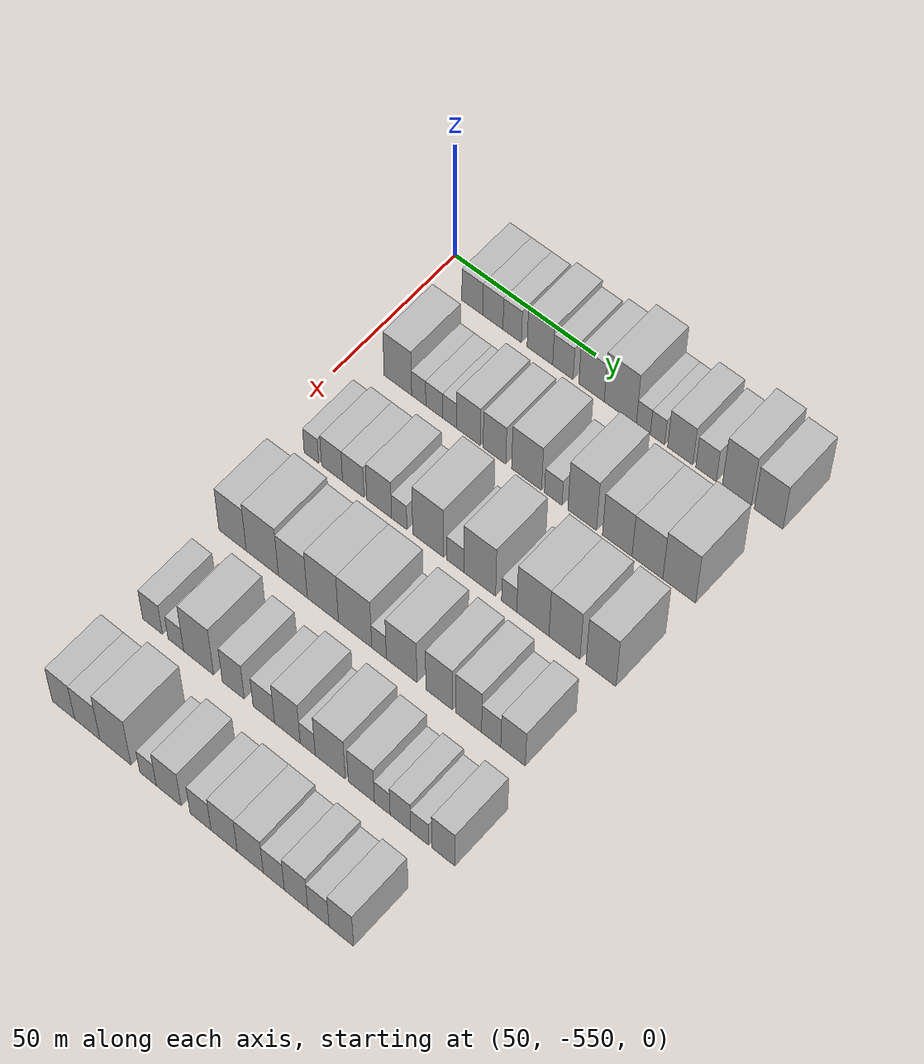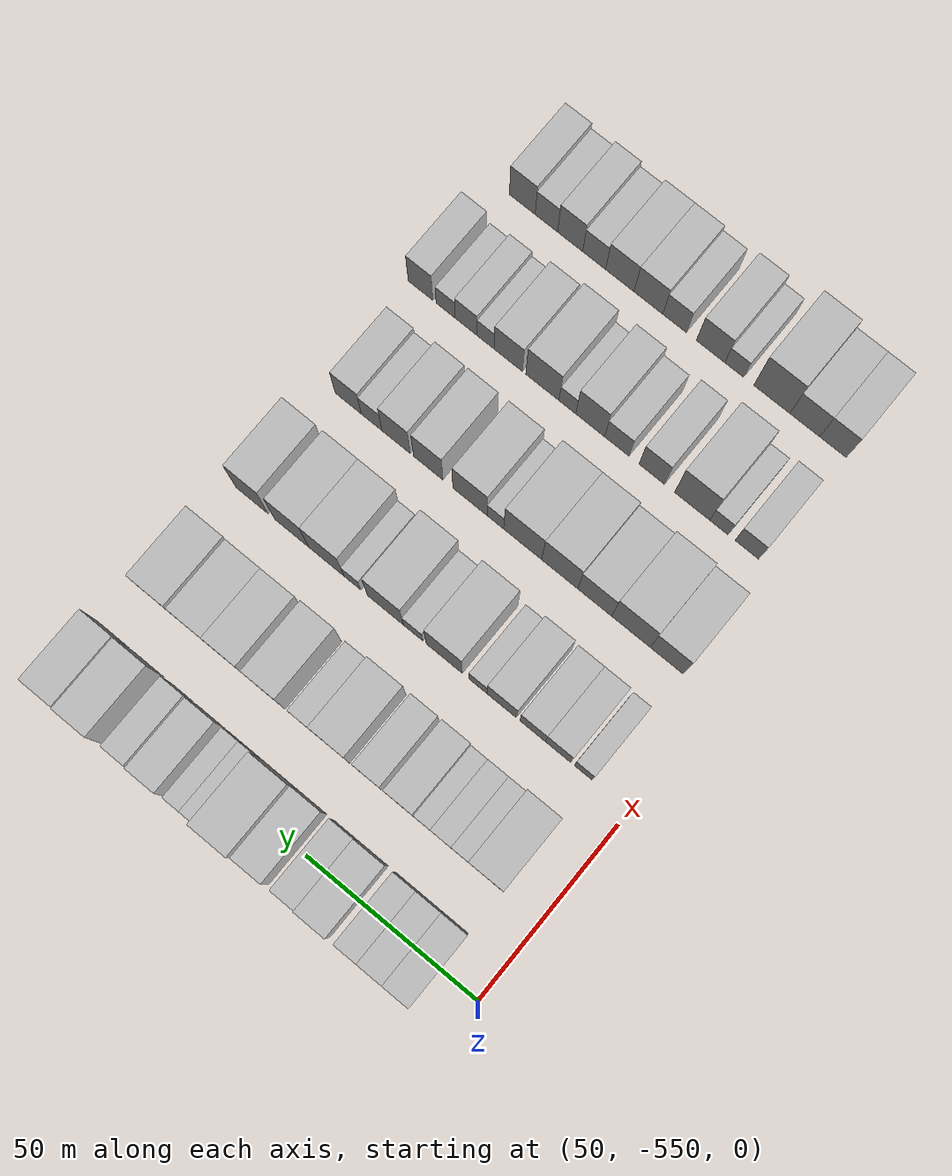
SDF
<sdf version="1.6">
 <world name="default">
  <model name="building_1">
   <static>1</static>
   <pose>50.0000 -535.2608 0 0.000000 0.000000 0.000000</pose>
   <link name="link">
    <pose>0 0 7.50 0 0 0</pose>
    <collision name="collision"><geometry><box><size>20.0000 7.4783 15.0000</size></box></geometry></collision>
    <visual name="visual">
     <cast_shadows>0</cast_shadows>
     <geometry><box><size>20.0000 7.4783 15.0000</size></box></geometry>
     <material>
      <script>
       <uri>model://HANNAS_wall/materials/scripts</uri>
       <uri>model://HANNAS_wall/materials/textures</uri>
       <name>vrc/HANNAS_wall</name>
      </script>
     </material>
    </visual>
   </link>
  </model>
  <model name="building_2">
   <static>1</static>
   <pose>50.0000 -527.9367 0 0.000000 0.000000 0.000000</pose>
   <link name="link">
    <pose>0 0 7.50 0 0 0</pose>
    <collision name="collision"><geometry><box><size>20.0000 7.1699 15.0000</size></box></geometry></collision>
    <visual name="visual">
     <cast_shadows>0</cast_shadows>
     <geometry><box><size>20.0000 7.1699 15.0000</size></box></geometry>
     <material>
      <script>
       <uri>model://HANNAS_wall/materials/scripts</uri>
       <uri>model://HANNAS_wall/materials/textures</uri>
       <name>vrc/HANNAS_wall</name>
      </script>
     </material>
    </visual>
   </link>
  </model>
  <model name="building_3">
   <static>1</static>
   <pose>50.0000 -521.0979 0 0.000000 0.000000 0.000000</pose>
   <link name="link">
    <pose>0 0 7.50 0 0 0</pose>
    <collision name="collision"><geometry><box><size>20.0000 6.5079 15.0000</size></box></geometry></collision>
    <visual name="visual">
     <cast_shadows>0</cast_shadows>
     <geometry><box><size>20.0000 6.5079 15.0000</size></box></geometry>
     <material>
      <script>
       <uri>model://HANNAS_wall/materials/scripts</uri>
       <uri>model://HANNAS_wall/materials/textures</uri>
       <name>vrc/HANNAS_wall</name>
      </script>
     </material>
    </visual>
   </link>
  </model>
  <model name="building_4">
   <static>1</static>
   <pose>50.0000 -511.3593 0 0.000000 0.000000 0.000000</pose>
   <link name="link">
    <pose>0 0 9.00 0 0 0</pose>
    <collision name="collision"><geometry><box><size>20.0000 8.9694 18.0000</size></box></geometry></collision>
    <visual name="visual">
     <cast_shadows>0</cast_shadows>
     <geometry><box><size>20.0000 8.9694 18.0000</size></box></geometry>
     <material>
      <script>
       <uri>model://HANNAS_wall/materials/scripts</uri>
       <uri>model://HANNAS_wall/materials/textures</uri>
       <name>vrc/HANNAS_wall</name>
      </script>
     </material>
    </visual>
   </link>
  </model>
  <model name="building_5">
   <static>1</static>
   <pose>50.0000 -503.3232 0 0.000000 0.000000 0.000000</pose>
   <link name="link">
    <pose>0 0 7.50 0 0 0</pose>
    <collision name="collision"><geometry><box><size>20.0000 7.1027 15.0000</size></box></geometry></collision>
    <visual name="visual">
     <cast_shadows>0</cast_shadows>
     <geometry><box><size>20.0000 7.1027 15.0000</size></box></geometry>
     <material>
      <script>
       <uri>model://HANNAS_wall/materials/scripts</uri>
       <uri>model://HANNAS_wall/materials/textures</uri>
       <name>vrc/HANNAS_wall</name>
      </script>
     </material>
    </visual>
   </link>
  </model>
  <model name="building_6">
   <static>1</static>
   <pose>50.0000 -493.3835 0 0.000000 0.000000 0.000000</pose>
   <link name="link">
    <pose>0 0 9.00 0 0 0</pose>
    <collision name="collision"><geometry><box><size>20.0000 8.7767 18.0000</size></box></geometry></collision>
    <visual name="visual">
     <cast_shadows>0</cast_shadows>
     <geometry><box><size>20.0000 8.7767 18.0000</size></box></geometry>
     <material>
      <script>
       <uri>model://HANNAS_wall/materials/scripts</uri>
       <uri>model://HANNAS_wall/materials/textures</uri>
       <name>vrc/HANNAS_wall</name>
      </script>
     </material>
    </visual>
   </link>
  </model>
  <model name="building_7">
   <static>1</static>
   <pose>50.0000 -483.4961 0 0.000000 0.000000 0.000000</pose>
   <link name="link">
    <pose>0 0 12.00 0 0 0</pose>
    <collision name="collision"><geometry><box><size>20.0000 10.9980 24.0000</size></box></geometry></collision>
    <visual name="visual">
     <cast_shadows>0</cast_shadows>
     <geometry><box><size>20.0000 10.9980 24.0000</size></box></geometry>
     <material>
      <script>
       <uri>model://HANNAS_wall/materials/scripts</uri>
       <uri>model://HANNAS_wall/materials/textures</uri>
       <name>vrc/HANNAS_wall</name>
      </script>
     </material>
    </visual>
   </link>
  </model>
  <model name="building_8">
   <static>1</static>
   <pose>50.0000 -475.5962 0 0.000000 0.000000 0.000000</pose>
   <link name="link">
    <pose>0 0 6.00 0 0 0</pose>
    <collision name="collision"><geometry><box><size>20.0000 4.8018 12.0000</size></box></geometry></collision>
    <visual name="visual">
     <cast_shadows>0</cast_shadows>
     <geometry><box><size>20.0000 4.8018 12.0000</size></box></geometry>
     <material>
      <script>
       <uri>model://HANNAS_wall/materials/scripts</uri>
       <uri>model://HANNAS_wall/materials/textures</uri>
       <name>vrc/HANNAS_wall</name>
      </script>
     </material>
    </visual>
   </link>
  </model>
  <model name="building_9">
   <static>1</static>
   <pose>50.0000 -470.7642 0 0.000000 0.000000 0.000000</pose>
   <link name="link">
    <pose>0 0 6.00 0 0 0</pose>
    <collision name="collision"><geometry><box><size>20.0000 4.8622 12.0000</size></box></geometry></collision>
    <visual name="visual">
     <cast_shadows>0</cast_shadows>
     <geometry><box><size>20.0000 4.8622 12.0000</size></box></geometry>
     <material>
      <script>
       <uri>model://HANNAS_wall/materials/scripts</uri>
       <uri>model://HANNAS_wall/materials/textures</uri>
       <name>vrc/HANNAS_wall</name>
      </script>
     </material>
    </visual>
   </link>
  </model>
  <model name="building_10">
   <static>1</static>
   <pose>50.0000 -463.0663 0 0.000000 0.000000 0.000000</pose>
   <link name="link">
    <pose>0 0 9.00 0 0 0</pose>
    <collision name="collision"><geometry><box><size>20.0000 8.5334 18.0000</size></box></geometry></collision>
    <visual name="visual">
     <cast_shadows>0</cast_shadows>
     <geometry><box><size>20.0000 8.5334 18.0000</size></box></geometry>
     <material>
      <script>
       <uri>model://HANNAS_wall/materials/scripts</uri>
       <uri>model://HANNAS_wall/materials/textures</uri>
       <name>vrc/HANNAS_wall</name>
      </script>
     </material>
    </visual>
   </link>
  </model>
  <model name="building_11">
   <static>1</static>
   <pose>50.0000 -454.3824 0 0.000000 0.000000 0.000000</pose>
   <link name="link">
    <pose>0 0 7.50 0 0 0</pose>
    <collision name="collision"><geometry><box><size>20.0000 6.8344 15.0000</size></box></geometry></collision>
    <visual name="visual">
     <cast_shadows>0</cast_shadows>
     <geometry><box><size>20.0000 6.8344 15.0000</size></box></geometry>
     <material>
      <script>
       <uri>model://HANNAS_wall/materials/scripts</uri>
       <uri>model://HANNAS_wall/materials/textures</uri>
       <name>vrc/HANNAS_wall</name>
      </script>
     </material>
    </visual>
   </link>
  </model>
  <model name="building_12">
   <static>1</static>
   <pose>50.0000 -444.1268 0 0.000000 0.000000 0.000000</pose>
   <link name="link">
    <pose>0 0 12.00 0 0 0</pose>
    <collision name="collision"><geometry><box><size>20.0000 9.6769 24.0000</size></box></geometry></collision>
    <visual name="visual">
     <cast_shadows>0</cast_shadows>
     <geometry><box><size>20.0000 9.6769 24.0000</size></box></geometry>
     <material>
      <script>
       <uri>model://HANNAS_wall/materials/scripts</uri>
       <uri>model://HANNAS_wall/materials/textures</uri>
       <name>vrc/HANNAS_wall</name>
      </script>
     </material>
    </visual>
   </link>
  </model>
  <model name="building_13">
   <static>1</static>
   <pose>50.0000 -433.5658 0 0.000000 0.000000 0.000000</pose>
   <link name="link">
    <pose>0 0 10.50 0 0 0</pose>
    <collision name="collision"><geometry><box><size>20.0000 9.4451 21.0000</size></box></geometry></collision>
    <visual name="visual">
     <cast_shadows>0</cast_shadows>
     <geometry><box><size>20.0000 9.4451 21.0000</size></box></geometry>
     <material>
      <script>
       <uri>model://HANNAS_wall/materials/scripts</uri>
       <uri>model://HANNAS_wall/materials/textures</uri>
       <name>vrc/HANNAS_wall</name>
      </script>
     </material>
    </visual>
   </link>
  </model>
  <model name="building_127">
   <static>1</static>
   <pose>82.0000 -534.1198 0 0.000000 0.000000 0.000000</pose>
   <link name="link">
    <pose>0 0 10.50 0 0 0</pose>
    <collision name="collision"><geometry><box><size>20.0000 9.7603 21.0000</size></box></geometry></collision>
    <visual name="visual">
     <cast_shadows>0</cast_shadows>
     <geometry><box><size>20.0000 9.7603 21.0000</size></box></geometry>
     <material>
      <script>
       <uri>model://HANNAS_wall/materials/scripts</uri>
       <uri>model://HANNAS_wall/materials/textures</uri>
       <name>vrc/HANNAS_wall</name>
      </script>
     </material>
    </visual>
   </link>
  </model>
  <model name="building_128">
   <static>1</static>
   <pose>82.0000 -526.7469 0 0.000000 0.000000 0.000000</pose>
   <link name="link">
    <pose>0 0 6.00 0 0 0</pose>
    <collision name="collision"><geometry><box><size>20.0000 4.9856 12.0000</size></box></geometry></collision>
    <visual name="visual">
     <cast_shadows>0</cast_shadows>
     <geometry><box><size>20.0000 4.9856 12.0000</size></box></geometry>
     <material>
      <script>
       <uri>model://HANNAS_wall/materials/scripts</uri>
       <uri>model://HANNAS_wall/materials/textures</uri>
       <name>vrc/HANNAS_wall</name>
      </script>
     </material>
    </visual>
   </link>
  </model>
  <model name="building_129">
   <static>1</static>
   <pose>82.0000 -521.2752 0 0.000000 0.000000 0.000000</pose>
   <link name="link">
    <pose>0 0 6.00 0 0 0</pose>
    <collision name="collision"><geometry><box><size>20.0000 5.9579 12.0000</size></box></geometry></collision>
    <visual name="visual">
     <cast_shadows>0</cast_shadows>
     <geometry><box><size>20.0000 5.9579 12.0000</size></box></geometry>
     <material>
      <script>
       <uri>model://HANNAS_wall/materials/scripts</uri>
       <uri>model://HANNAS_wall/materials/textures</uri>
       <name>vrc/HANNAS_wall</name>
      </script>
     </material>
    </visual>
   </link>
  </model>
  <model name="building_130">
   <static>1</static>
   <pose>82.0000 -515.8811 0 0.000000 0.000000 0.000000</pose>
   <link name="link">
    <pose>0 0 6.00 0 0 0</pose>
    <collision name="collision"><geometry><box><size>20.0000 4.8302 12.0000</size></box></geometry></collision>
    <visual name="visual">
     <cast_shadows>0</cast_shadows>
     <geometry><box><size>20.0000 4.8302 12.0000</size></box></geometry>
     <material>
      <script>
       <uri>model://HANNAS_wall/materials/scripts</uri>
       <uri>model://HANNAS_wall/materials/textures</uri>
       <name>vrc/HANNAS_wall</name>
      </script>
     </material>
    </visual>
   </link>
  </model>
  <model name="building_131">
   <static>1</static>
   <pose>82.0000 -509.3199 0 0.000000 0.000000 0.000000</pose>
   <link name="link">
    <pose>0 0 9.00 0 0 0</pose>
    <collision name="collision"><geometry><box><size>20.0000 8.2923 18.0000</size></box></geometry></collision>
    <visual name="visual">
     <cast_shadows>0</cast_shadows>
     <geometry><box><size>20.0000 8.2923 18.0000</size></box></geometry>
     <material>
      <script>
       <uri>model://HANNAS_wall/materials/scripts</uri>
       <uri>model://HANNAS_wall/materials/textures</uri>
       <name>vrc/HANNAS_wall</name>
      </script>
     </material>
    </visual>
   </link>
  </model>
  <model name="building_132">
   <static>1</static>
   <pose>82.0000 -500.2524 0 0.000000 0.000000 0.000000</pose>
   <link name="link">
    <pose>0 0 9.00 0 0 0</pose>
    <collision name="collision"><geometry><box><size>20.0000 7.8429 18.0000</size></box></geometry></collision>
    <visual name="visual">
     <cast_shadows>0</cast_shadows>
     <geometry><box><size>20.0000 7.8429 18.0000</size></box></geometry>
     <material>
      <script>
       <uri>model://HANNAS_wall/materials/scripts</uri>
       <uri>model://HANNAS_wall/materials/textures</uri>
       <name>vrc/HANNAS_wall</name>
      </script>
     </material>
    </visual>
   </link>
  </model>
  <model name="building_133">
   <static>1</static>
   <pose>82.0000 -489.1864 0 0.000000 0.000000 0.000000</pose>
   <link name="link">
    <pose>0 0 10.50 0 0 0</pose>
    <collision name="collision"><geometry><box><size>20.0000 10.2890 21.0000</size></box></geometry></collision>
    <visual name="visual">
     <cast_shadows>0</cast_shadows>
     <geometry><box><size>20.0000 10.2890 21.0000</size></box></geometry>
     <material>
      <script>
       <uri>model://HANNAS_wall/materials/scripts</uri>
       <uri>model://HANNAS_wall/materials/textures</uri>
       <name>vrc/HANNAS_wall</name>
      </script>
     </material>
    </visual>
   </link>
  </model>
  <model name="building_134">
   <static>1</static>
   <pose>82.0000 -480.0580 0 0.000000 0.000000 0.000000</pose>
   <link name="link">
    <pose>0 0 6.00 0 0 0</pose>
    <collision name="collision"><geometry><box><size>20.0000 5.9679 12.0000</size></box></geometry></collision>
    <visual name="visual">
     <cast_shadows>0</cast_shadows>
     <geometry><box><size>20.0000 5.9679 12.0000</size></box></geometry>
     <material>
      <script>
       <uri>model://HANNAS_wall/materials/scripts</uri>
       <uri>model://HANNAS_wall/materials/textures</uri>
       <name>vrc/HANNAS_wall</name>
      </script>
     </material>
    </visual>
   </link>
  </model>
  <model name="building_135">
   <static>1</static>
   <pose>82.0000 -470.2388 0 0.000000 0.000000 0.000000</pose>
   <link name="link">
    <pose>0 0 12.00 0 0 0</pose>
    <collision name="collision"><geometry><box><size>20.0000 9.6707 24.0000</size></box></geometry></collision>
    <visual name="visual">
     <cast_shadows>0</cast_shadows>
     <geometry><box><size>20.0000 9.6707 24.0000</size></box></geometry>
     <material>
      <script>
       <uri>model://HANNAS_wall/materials/scripts</uri>
       <uri>model://HANNAS_wall/materials/textures</uri>
       <name>vrc/HANNAS_wall</name>
      </script>
     </material>
    </visual>
   </link>
  </model>
  <model name="building_136">
   <static>1</static>
   <pose>82.0000 -458.4514 0 0.000000 0.000000 0.000000</pose>
   <link name="link">
    <pose>0 0 10.50 0 0 0</pose>
    <collision name="collision"><geometry><box><size>20.0000 9.9041 21.0000</size></box></geometry></collision>
    <visual name="visual">
     <cast_shadows>0</cast_shadows>
     <geometry><box><size>20.0000 9.9041 21.0000</size></box></geometry>
     <material>
      <script>
       <uri>model://HANNAS_wall/materials/scripts</uri>
       <uri>model://HANNAS_wall/materials/textures</uri>
       <name>vrc/HANNAS_wall</name>
      </script>
     </material>
    </visual>
   </link>
  </model>
  <model name="building_137">
   <static>1</static>
   <pose>82.0000 -448.3901 0 0.000000 0.000000 0.000000</pose>
   <link name="link">
    <pose>0 0 10.50 0 0 0</pose>
    <collision name="collision"><geometry><box><size>20.0000 10.2185 21.0000</size></box></geometry></collision>
    <visual name="visual">
     <cast_shadows>0</cast_shadows>
     <geometry><box><size>20.0000 10.2185 21.0000</size></box></geometry>
     <material>
      <script>
       <uri>model://HANNAS_wall/materials/scripts</uri>
       <uri>model://HANNAS_wall/materials/textures</uri>
       <name>vrc/HANNAS_wall</name>
      </script>
     </material>
    </visual>
   </link>
  </model>
  <model name="building_138">
   <static>1</static>
   <pose>82.0000 -437.8730 0 0.000000 0.000000 0.000000</pose>
   <link name="link">
    <pose>0 0 12.00 0 0 0</pose>
    <collision name="collision"><geometry><box><size>20.0000 10.8157 24.0000</size></box></geometry></collision>
    <visual name="visual">
     <cast_shadows>0</cast_shadows>
     <geometry><box><size>20.0000 10.8157 24.0000</size></box></geometry>
     <material>
      <script>
       <uri>model://HANNAS_wall/materials/scripts</uri>
       <uri>model://HANNAS_wall/materials/textures</uri>
       <name>vrc/HANNAS_wall</name>
      </script>
     </material>
    </visual>
   </link>
  </model>
  <model name="building_252">
   <static>1</static>
   <pose>114.0000 -536.4174 0 0.000000 0.000000 0.000000</pose>
   <link name="link">
    <pose>0 0 6.00 0 0 0</pose>
    <collision name="collision"><geometry><box><size>20.0000 5.1651 12.0000</size></box></geometry></collision>
    <visual name="visual">
     <cast_shadows>0</cast_shadows>
     <geometry><box><size>20.0000 5.1651 12.0000</size></box></geometry>
     <material>
      <script>
       <uri>model://HANNAS_wall/materials/scripts</uri>
       <uri>model://HANNAS_wall/materials/textures</uri>
       <name>vrc/HANNAS_wall</name>
      </script>
     </material>
    </visual>
   </link>
  </model>
  <model name="building_253">
   <static>1</static>
   <pose>114.0000 -529.1294 0 0.000000 0.000000 0.000000</pose>
   <link name="link">
    <pose>0 0 7.50 0 0 0</pose>
    <collision name="collision"><geometry><box><size>20.0000 7.4110 15.0000</size></box></geometry></collision>
    <visual name="visual">
     <cast_shadows>0</cast_shadows>
     <geometry><box><size>20.0000 7.4110 15.0000</size></box></geometry>
     <material>
      <script>
       <uri>model://HANNAS_wall/materials/scripts</uri>
       <uri>model://HANNAS_wall/materials/textures</uri>
       <name>vrc/HANNAS_wall</name>
      </script>
     </material>
    </visual>
   </link>
  </model>
  <model name="building_254">
   <static>1</static>
   <pose>114.0000 -521.6762 0 0.000000 0.000000 0.000000</pose>
   <link name="link">
    <pose>0 0 7.50 0 0 0</pose>
    <collision name="collision"><geometry><box><size>20.0000 7.4954 15.0000</size></box></geometry></collision>
    <visual name="visual">
     <cast_shadows>0</cast_shadows>
     <geometry><box><size>20.0000 7.4954 15.0000</size></box></geometry>
     <material>
      <script>
       <uri>model://HANNAS_wall/materials/scripts</uri>
       <uri>model://HANNAS_wall/materials/textures</uri>
       <name>vrc/HANNAS_wall</name>
      </script>
     </material>
    </visual>
   </link>
  </model>
  <model name="building_255">
   <static>1</static>
   <pose>114.0000 -512.6109 0 0.000000 0.000000 0.000000</pose>
   <link name="link">
    <pose>0 0 9.00 0 0 0</pose>
    <collision name="collision"><geometry><box><size>20.0000 8.6351 18.0000</size></box></geometry></collision>
    <visual name="visual">
     <cast_shadows>0</cast_shadows>
     <geometry><box><size>20.0000 8.6351 18.0000</size></box></geometry>
     <material>
      <script>
       <uri>model://HANNAS_wall/materials/scripts</uri>
       <uri>model://HANNAS_wall/materials/textures</uri>
       <name>vrc/HANNAS_wall</name>
      </script>
     </material>
    </visual>
   </link>
  </model>
  <model name="building_256">
   <static>1</static>
   <pose>114.0000 -505.6422 0 0.000000 0.000000 0.000000</pose>
   <link name="link">
    <pose>0 0 6.00 0 0 0</pose>
    <collision name="collision"><geometry><box><size>20.0000 5.3022 12.0000</size></box></geometry></collision>
    <visual name="visual">
     <cast_shadows>0</cast_shadows>
     <geometry><box><size>20.0000 5.3022 12.0000</size></box></geometry>
     <material>
      <script>
       <uri>model://HANNAS_wall/materials/scripts</uri>
       <uri>model://HANNAS_wall/materials/textures</uri>
       <name>vrc/HANNAS_wall</name>
      </script>
     </material>
    </visual>
   </link>
  </model>
  <model name="building_257">
   <static>1</static>
   <pose>114.0000 -495.6509 0 0.000000 0.000000 0.000000</pose>
   <link name="link">
    <pose>0 0 12.00 0 0 0</pose>
    <collision name="collision"><geometry><box><size>20.0000 10.6805 24.0000</size></box></geometry></collision>
    <visual name="visual">
     <cast_shadows>0</cast_shadows>
     <geometry><box><size>20.0000 10.6805 24.0000</size></box></geometry>
     <material>
      <script>
       <uri>model://HANNAS_wall/materials/scripts</uri>
       <uri>model://HANNAS_wall/materials/textures</uri>
       <name>vrc/HANNAS_wall</name>
      </script>
     </material>
    </visual>
   </link>
  </model>
  <model name="building_258">
   <static>1</static>
   <pose>114.0000 -486.4150 0 0.000000 0.000000 0.000000</pose>
   <link name="link">
    <pose>0 0 6.00 0 0 0</pose>
    <collision name="collision"><geometry><box><size>20.0000 5.7912 12.0000</size></box></geometry></collision>
    <visual name="visual">
     <cast_shadows>0</cast_shadows>
     <geometry><box><size>20.0000 5.7912 12.0000</size></box></geometry>
     <material>
      <script>
       <uri>model://HANNAS_wall/materials/scripts</uri>
       <uri>model://HANNAS_wall/materials/textures</uri>
       <name>vrc/HANNAS_wall</name>
      </script>
     </material>
    </visual>
   </link>
  </model>
  <model name="building_259">
   <static>1</static>
   <pose>114.0000 -478.1163 0 0.000000 0.000000 0.000000</pose>
   <link name="link">
    <pose>0 0 12.00 0 0 0</pose>
    <collision name="collision"><geometry><box><size>20.0000 10.8062 24.0000</size></box></geometry></collision>
    <visual name="visual">
     <cast_shadows>0</cast_shadows>
     <geometry><box><size>20.0000 10.8062 24.0000</size></box></geometry>
     <material>
      <script>
       <uri>model://HANNAS_wall/materials/scripts</uri>
       <uri>model://HANNAS_wall/materials/textures</uri>
       <name>vrc/HANNAS_wall</name>
      </script>
     </material>
    </visual>
   </link>
  </model>
  <model name="building_260">
   <static>1</static>
   <pose>114.0000 -468.1643 0 0.000000 0.000000 0.000000</pose>
   <link name="link">
    <pose>0 0 6.00 0 0 0</pose>
    <collision name="collision"><geometry><box><size>20.0000 5.0977 12.0000</size></box></geometry></collision>
    <visual name="visual">
     <cast_shadows>0</cast_shadows>
     <geometry><box><size>20.0000 5.0977 12.0000</size></box></geometry>
     <material>
      <script>
       <uri>model://HANNAS_wall/materials/scripts</uri>
       <uri>model://HANNAS_wall/materials/textures</uri>
       <name>vrc/HANNAS_wall</name>
      </script>
     </material>
    </visual>
   </link>
  </model>
  <model name="building_261">
   <static>1</static>
   <pose>114.0000 -460.2305 0 0.000000 0.000000 0.000000</pose>
   <link name="link">
    <pose>0 0 12.00 0 0 0</pose>
    <collision name="collision"><geometry><box><size>20.0000 10.7701 24.0000</size></box></geometry></collision>
    <visual name="visual">
     <cast_shadows>0</cast_shadows>
     <geometry><box><size>20.0000 10.7701 24.0000</size></box></geometry>
     <material>
      <script>
       <uri>model://HANNAS_wall/materials/scripts</uri>
       <uri>model://HANNAS_wall/materials/textures</uri>
       <name>vrc/HANNAS_wall</name>
      </script>
     </material>
    </visual>
   </link>
  </model>
  <model name="building_262">
   <static>1</static>
   <pose>114.0000 -449.7230 0 0.000000 0.000000 0.000000</pose>
   <link name="link">
    <pose>0 0 12.00 0 0 0</pose>
    <collision name="collision"><geometry><box><size>20.0000 10.2449 24.0000</size></box></geometry></collision>
    <visual name="visual">
     <cast_shadows>0</cast_shadows>
     <geometry><box><size>20.0000 10.2449 24.0000</size></box></geometry>
     <material>
      <script>
       <uri>model://HANNAS_wall/materials/scripts</uri>
       <uri>model://HANNAS_wall/materials/textures</uri>
       <name>vrc/HANNAS_wall</name>
      </script>
     </material>
    </visual>
   </link>
  </model>
  <model name="building_263">
   <static>1</static>
   <pose>114.0000 -437.6771 0 0.000000 0.000000 0.000000</pose>
   <link name="link">
    <pose>0 0 12.00 0 0 0</pose>
    <collision name="collision"><geometry><box><size>20.0000 9.8470 24.0000</size></box></geometry></collision>
    <visual name="visual">
     <cast_shadows>0</cast_shadows>
     <geometry><box><size>20.0000 9.8470 24.0000</size></box></geometry>
     <material>
      <script>
       <uri>model://HANNAS_wall/materials/scripts</uri>
       <uri>model://HANNAS_wall/materials/textures</uri>
       <name>vrc/HANNAS_wall</name>
      </script>
     </material>
    </visual>
   </link>
  </model>
  <model name="building_375">
   <static>1</static>
   <pose>146.0000 -535.1988 0 0.000000 0.000000 0.000000</pose>
   <link name="link">
    <pose>0 0 10.50 0 0 0</pose>
    <collision name="collision"><geometry><box><size>20.0000 9.6025 21.0000</size></box></geometry></collision>
    <visual name="visual">
     <cast_shadows>0</cast_shadows>
     <geometry><box><size>20.0000 9.6025 21.0000</size></box></geometry>
     <material>
      <script>
       <uri>model://HANNAS_wall/materials/scripts</uri>
       <uri>model://HANNAS_wall/materials/textures</uri>
       <name>vrc/HANNAS_wall</name>
      </script>
     </material>
    </visual>
   </link>
  </model>
  <model name="building_376">
   <static>1</static>
   <pose>146.0000 -524.7533 0 0.000000 0.000000 0.000000</pose>
   <link name="link">
    <pose>0 0 12.00 0 0 0</pose>
    <collision name="collision"><geometry><box><size>20.0000 11.2885 24.0000</size></box></geometry></collision>
    <visual name="visual">
     <cast_shadows>0</cast_shadows>
     <geometry><box><size>20.0000 11.2885 24.0000</size></box></geometry>
     <material>
      <script>
       <uri>model://HANNAS_wall/materials/scripts</uri>
       <uri>model://HANNAS_wall/materials/textures</uri>
       <name>vrc/HANNAS_wall</name>
      </script>
     </material>
    </visual>
   </link>
  </model>
  <model name="building_377">
   <static>1</static>
   <pose>146.0000 -514.0977 0 0.000000 0.000000 0.000000</pose>
   <link name="link">
    <pose>0 0 10.50 0 0 0</pose>
    <collision name="collision"><geometry><box><size>20.0000 10.0226 21.0000</size></box></geometry></collision>
    <visual name="visual">
     <cast_shadows>0</cast_shadows>
     <geometry><box><size>20.0000 10.0226 21.0000</size></box></geometry>
     <material>
      <script>
       <uri>model://HANNAS_wall/materials/scripts</uri>
       <uri>model://HANNAS_wall/materials/textures</uri>
       <name>vrc/HANNAS_wall</name>
      </script>
     </material>
    </visual>
   </link>
  </model>
  <model name="building_378">
   <static>1</static>
   <pose>146.0000 -503.7047 0 0.000000 0.000000 0.000000</pose>
   <link name="link">
    <pose>0 0 12.00 0 0 0</pose>
    <collision name="collision"><geometry><box><size>20.0000 10.7633 24.0000</size></box></geometry></collision>
    <visual name="visual">
     <cast_shadows>0</cast_shadows>
     <geometry><box><size>20.0000 10.7633 24.0000</size></box></geometry>
     <material>
      <script>
       <uri>model://HANNAS_wall/materials/scripts</uri>
       <uri>model://HANNAS_wall/materials/textures</uri>
       <name>vrc/HANNAS_wall</name>
      </script>
     </material>
    </visual>
   </link>
  </model>
  <model name="building_379">
   <static>1</static>
   <pose>146.0000 -492.6381 0 0.000000 0.000000 0.000000</pose>
   <link name="link">
    <pose>0 0 12.00 0 0 0</pose>
    <collision name="collision"><geometry><box><size>20.0000 11.3700 24.0000</size></box></geometry></collision>
    <visual name="visual">
     <cast_shadows>0</cast_shadows>
     <geometry><box><size>20.0000 11.3700 24.0000</size></box></geometry>
     <material>
      <script>
       <uri>model://HANNAS_wall/materials/scripts</uri>
       <uri>model://HANNAS_wall/materials/textures</uri>
       <name>vrc/HANNAS_wall</name>
      </script>
     </material>
    </visual>
   </link>
  </model>
  <model name="building_380">
   <static>1</static>
   <pose>146.0000 -484.4740 0 0.000000 0.000000 0.000000</pose>
   <link name="link">
    <pose>0 0 6.00 0 0 0</pose>
    <collision name="collision"><geometry><box><size>20.0000 4.9581 12.0000</size></box></geometry></collision>
    <visual name="visual">
     <cast_shadows>0</cast_shadows>
     <geometry><box><size>20.0000 4.9581 12.0000</size></box></geometry>
     <material>
      <script>
       <uri>model://HANNAS_wall/materials/scripts</uri>
       <uri>model://HANNAS_wall/materials/textures</uri>
       <name>vrc/HANNAS_wall</name>
      </script>
     </material>
    </visual>
   </link>
  </model>
  <model name="building_381">
   <static>1</static>
   <pose>146.0000 -476.8470 0 0.000000 0.000000 0.000000</pose>
   <link name="link">
    <pose>0 0 10.50 0 0 0</pose>
    <collision name="collision"><geometry><box><size>20.0000 10.2960 21.0000</size></box></geometry></collision>
    <visual name="visual">
     <cast_shadows>0</cast_shadows>
     <geometry><box><size>20.0000 10.2960 21.0000</size></box></geometry>
     <material>
      <script>
       <uri>model://HANNAS_wall/materials/scripts</uri>
       <uri>model://HANNAS_wall/materials/textures</uri>
       <name>vrc/HANNAS_wall</name>
      </script>
     </material>
    </visual>
   </link>
  </model>
  <model name="building_382">
   <static>1</static>
   <pose>146.0000 -464.2639 0 0.000000 0.000000 0.000000</pose>
   <link name="link">
    <pose>0 0 10.50 0 0 0</pose>
    <collision name="collision"><geometry><box><size>20.0000 8.8702 21.0000</size></box></geometry></collision>
    <visual name="visual">
     <cast_shadows>0</cast_shadows>
     <geometry><box><size>20.0000 8.8702 21.0000</size></box></geometry>
     <material>
      <script>
       <uri>model://HANNAS_wall/materials/scripts</uri>
       <uri>model://HANNAS_wall/materials/textures</uri>
       <name>vrc/HANNAS_wall</name>
      </script>
     </material>
    </visual>
   </link>
  </model>
  <model name="building_383">
   <static>1</static>
   <pose>146.0000 -454.5128 0 0.000000 0.000000 0.000000</pose>
   <link name="link">
    <pose>0 0 10.50 0 0 0</pose>
    <collision name="collision"><geometry><box><size>20.0000 8.6319 21.0000</size></box></geometry></collision>
    <visual name="visual">
     <cast_shadows>0</cast_shadows>
     <geometry><box><size>20.0000 8.6319 21.0000</size></box></geometry>
     <material>
      <script>
       <uri>model://HANNAS_wall/materials/scripts</uri>
       <uri>model://HANNAS_wall/materials/textures</uri>
       <name>vrc/HANNAS_wall</name>
      </script>
     </material>
    </visual>
   </link>
  </model>
  <model name="building_384">
   <static>1</static>
   <pose>146.0000 -447.0395 0 0.000000 0.000000 0.000000</pose>
   <link name="link">
    <pose>0 0 7.50 0 0 0</pose>
    <collision name="collision"><geometry><box><size>20.0000 6.3147 15.0000</size></box></geometry></collision>
    <visual name="visual">
     <cast_shadows>0</cast_shadows>
     <geometry><box><size>20.0000 6.3147 15.0000</size></box></geometry>
     <material>
      <script>
       <uri>model://HANNAS_wall/materials/scripts</uri>
       <uri>model://HANNAS_wall/materials/textures</uri>
       <name>vrc/HANNAS_wall</name>
      </script>
     </material>
    </visual>
   </link>
  </model>
  <model name="building_385">
   <static>1</static>
   <pose>146.0000 -439.8746 0 0.000000 0.000000 0.000000</pose>
   <link name="link">
    <pose>0 0 9.00 0 0 0</pose>
    <collision name="collision"><geometry><box><size>20.0000 8.0152 18.0000</size></box></geometry></collision>
    <visual name="visual">
     <cast_shadows>0</cast_shadows>
     <geometry><box><size>20.0000 8.0152 18.0000</size></box></geometry>
     <material>
      <script>
       <uri>model://HANNAS_wall/materials/scripts</uri>
       <uri>model://HANNAS_wall/materials/textures</uri>
       <name>vrc/HANNAS_wall</name>
      </script>
     </material>
    </visual>
   </link>
  </model>
  <model name="building_491">
   <static>1</static>
   <pose>178.0000 -533.5242 0 0.000000 0.000000 0.000000</pose>
   <link name="link">
    <pose>0 0 7.50 0 0 0</pose>
    <collision name="collision"><geometry><box><size>20.0000 6.9517 15.0000</size></box></geometry></collision>
    <visual name="visual">
     <cast_shadows>0</cast_shadows>
     <geometry><box><size>20.0000 6.9517 15.0000</size></box></geometry>
     <material>
      <script>
       <uri>model://HANNAS_wall/materials/scripts</uri>
       <uri>model://HANNAS_wall/materials/textures</uri>
       <name>vrc/HANNAS_wall</name>
      </script>
     </material>
    </visual>
   </link>
  </model>
  <model name="building_492">
   <static>1</static>
   <pose>178.0000 -525.3289 0 0.000000 0.000000 0.000000</pose>
   <link name="link">
    <pose>0 0 6.00 0 0 0</pose>
    <collision name="collision"><geometry><box><size>20.0000 5.4388 12.0000</size></box></geometry></collision>
    <visual name="visual">
     <cast_shadows>0</cast_shadows>
     <geometry><box><size>20.0000 5.4388 12.0000</size></box></geometry>
     <material>
      <script>
       <uri>model://HANNAS_wall/materials/scripts</uri>
       <uri>model://HANNAS_wall/materials/textures</uri>
       <name>vrc/HANNAS_wall</name>
      </script>
     </material>
    </visual>
   </link>
  </model>
  <model name="building_493">
   <static>1</static>
   <pose>178.0000 -517.4006 0 0.000000 0.000000 0.000000</pose>
   <link name="link">
    <pose>0 0 12.00 0 0 0</pose>
    <collision name="collision"><geometry><box><size>20.0000 10.4180 24.0000</size></box></geometry></collision>
    <visual name="visual">
     <cast_shadows>0</cast_shadows>
     <geometry><box><size>20.0000 10.4180 24.0000</size></box></geometry>
     <material>
      <script>
       <uri>model://HANNAS_wall/materials/scripts</uri>
       <uri>model://HANNAS_wall/materials/textures</uri>
       <name>vrc/HANNAS_wall</name>
      </script>
     </material>
    </visual>
   </link>
  </model>
  <model name="building_494">
   <static>1</static>
   <pose>178.0000 -505.4072 0 0.000000 0.000000 0.000000</pose>
   <link name="link">
    <pose>0 0 9.00 0 0 0</pose>
    <collision name="collision"><geometry><box><size>20.0000 7.5688 18.0000</size></box></geometry></collision>
    <visual name="visual">
     <cast_shadows>0</cast_shadows>
     <geometry><box><size>20.0000 7.5688 18.0000</size></box></geometry>
     <material>
      <script>
       <uri>model://HANNAS_wall/materials/scripts</uri>
       <uri>model://HANNAS_wall/materials/textures</uri>
       <name>vrc/HANNAS_wall</name>
      </script>
     </material>
    </visual>
   </link>
  </model>
  <model name="building_495">
   <static>1</static>
   <pose>178.0000 -494.9598 0 0.000000 0.000000 0.000000</pose>
   <link name="link">
    <pose>0 0 7.50 0 0 0</pose>
    <collision name="collision"><geometry><box><size>20.0000 7.3258 15.0000</size></box></geometry></collision>
    <visual name="visual">
     <cast_shadows>0</cast_shadows>
     <geometry><box><size>20.0000 7.3258 15.0000</size></box></geometry>
     <material>
      <script>
       <uri>model://HANNAS_wall/materials/scripts</uri>
       <uri>model://HANNAS_wall/materials/textures</uri>
       <name>vrc/HANNAS_wall</name>
      </script>
     </material>
    </visual>
   </link>
  </model>
  <model name="building_496">
   <static>1</static>
   <pose>178.0000 -486.9450 0 0.000000 0.000000 0.000000</pose>
   <link name="link">
    <pose>0 0 10.50 0 0 0</pose>
    <collision name="collision"><geometry><box><size>20.0000 8.7039 21.0000</size></box></geometry></collision>
    <visual name="visual">
     <cast_shadows>0</cast_shadows>
     <geometry><box><size>20.0000 8.7039 21.0000</size></box></geometry>
     <material>
      <script>
       <uri>model://HANNAS_wall/materials/scripts</uri>
       <uri>model://HANNAS_wall/materials/textures</uri>
       <name>vrc/HANNAS_wall</name>
      </script>
     </material>
    </visual>
   </link>
  </model>
  <model name="building_497">
   <static>1</static>
   <pose>178.0000 -480.0641 0 0.000000 0.000000 0.000000</pose>
   <link name="link">
    <pose>0 0 6.00 0 0 0</pose>
    <collision name="collision"><geometry><box><size>20.0000 5.0579 12.0000</size></box></geometry></collision>
    <visual name="visual">
     <cast_shadows>0</cast_shadows>
     <geometry><box><size>20.0000 5.0579 12.0000</size></box></geometry>
     <material>
      <script>
       <uri>model://HANNAS_wall/materials/scripts</uri>
       <uri>model://HANNAS_wall/materials/textures</uri>
       <name>vrc/HANNAS_wall</name>
      </script>
     </material>
    </visual>
   </link>
  </model>
  <model name="building_498">
   <static>1</static>
   <pose>178.0000 -472.5082 0 0.000000 0.000000 0.000000</pose>
   <link name="link">
    <pose>0 0 10.50 0 0 0</pose>
    <collision name="collision"><geometry><box><size>20.0000 10.0537 21.0000</size></box></geometry></collision>
    <visual name="visual">
     <cast_shadows>0</cast_shadows>
     <geometry><box><size>20.0000 10.0537 21.0000</size></box></geometry>
     <material>
      <script>
       <uri>model://HANNAS_wall/materials/scripts</uri>
       <uri>model://HANNAS_wall/materials/textures</uri>
       <name>vrc/HANNAS_wall</name>
      </script>
     </material>
    </visual>
   </link>
  </model>
  <model name="building_499">
   <static>1</static>
   <pose>178.0000 -462.1496 0 0.000000 0.000000 0.000000</pose>
   <link name="link">
    <pose>0 0 9.00 0 0 0</pose>
    <collision name="collision"><geometry><box><size>20.0000 8.6636 18.0000</size></box></geometry></collision>
    <visual name="visual">
     <cast_shadows>0</cast_shadows>
     <geometry><box><size>20.0000 8.6636 18.0000</size></box></geometry>
     <material>
      <script>
       <uri>model://HANNAS_wall/materials/scripts</uri>
       <uri>model://HANNAS_wall/materials/textures</uri>
       <name>vrc/HANNAS_wall</name>
      </script>
     </material>
    </visual>
   </link>
  </model>
  <model name="building_500">
   <static>1</static>
   <pose>178.0000 -455.2352 0 0.000000 0.000000 0.000000</pose>
   <link name="link">
    <pose>0 0 6.00 0 0 0</pose>
    <collision name="collision"><geometry><box><size>20.0000 5.1652 12.0000</size></box></geometry></collision>
    <visual name="visual">
     <cast_shadows>0</cast_shadows>
     <geometry><box><size>20.0000 5.1652 12.0000</size></box></geometry>
     <material>
      <script>
       <uri>model://HANNAS_wall/materials/scripts</uri>
       <uri>model://HANNAS_wall/materials/textures</uri>
       <name>vrc/HANNAS_wall</name>
      </script>
     </material>
    </visual>
   </link>
  </model>
  <model name="building_501">
   <static>1</static>
   <pose>178.0000 -449.2725 0 0.000000 0.000000 0.000000</pose>
   <link name="link">
    <pose>0 0 7.50 0 0 0</pose>
    <collision name="collision"><geometry><box><size>20.0000 6.7602 15.0000</size></box></geometry></collision>
    <visual name="visual">
     <cast_shadows>0</cast_shadows>
     <geometry><box><size>20.0000 6.7602 15.0000</size></box></geometry>
     <material>
      <script>
       <uri>model://HANNAS_wall/materials/scripts</uri>
       <uri>model://HANNAS_wall/materials/textures</uri>
       <name>vrc/HANNAS_wall</name>
      </script>
     </material>
    </visual>
   </link>
  </model>
  <model name="building_502">
   <static>1</static>
   <pose>178.0000 -442.9675 0 0.000000 0.000000 0.000000</pose>
   <link name="link">
    <pose>0 0 6.00 0 0 0</pose>
    <collision name="collision"><geometry><box><size>20.0000 5.8499 12.0000</size></box></geometry></collision>
    <visual name="visual">
     <cast_shadows>0</cast_shadows>
     <geometry><box><size>20.0000 5.8499 12.0000</size></box></geometry>
     <material>
      <script>
       <uri>model://HANNAS_wall/materials/scripts</uri>
       <uri>model://HANNAS_wall/materials/textures</uri>
       <name>vrc/HANNAS_wall</name>
      </script>
     </material>
    </visual>
   </link>
  </model>
  <model name="building_503">
   <static>1</static>
   <pose>178.0000 -435.2626 0 0.000000 0.000000 0.000000</pose>
   <link name="link">
    <pose>0 0 9.00 0 0 0</pose>
    <collision name="collision"><geometry><box><size>20.0000 7.5598 18.0000</size></box></geometry></collision>
    <visual name="visual">
     <cast_shadows>0</cast_shadows>
     <geometry><box><size>20.0000 7.5598 18.0000</size></box></geometry>
     <material>
      <script>
       <uri>model://HANNAS_wall/materials/scripts</uri>
       <uri>model://HANNAS_wall/materials/textures</uri>
       <name>vrc/HANNAS_wall</name>
      </script>
     </material>
    </visual>
   </link>
  </model>
  <model name="building_609">
   <static>1</static>
   <pose>210.0000 -534.0791 0 0.000000 0.000000 0.000000</pose>
   <link name="link">
    <pose>0 0 9.00 0 0 0</pose>
    <collision name="collision"><geometry><box><size>20.0000 7.8418 18.0000</size></box></geometry></collision>
    <visual name="visual">
     <cast_shadows>0</cast_shadows>
     <geometry><box><size>20.0000 7.8418 18.0000</size></box></geometry>
     <material>
      <script>
       <uri>model://HANNAS_wall/materials/scripts</uri>
       <uri>model://HANNAS_wall/materials/textures</uri>
       <name>vrc/HANNAS_wall</name>
      </script>
     </material>
    </visual>
   </link>
  </model>
  <model name="building_610">
   <static>1</static>
   <pose>210.0000 -525.7430 0 0.000000 0.000000 0.000000</pose>
   <link name="link">
    <pose>0 0 9.00 0 0 0</pose>
    <collision name="collision"><geometry><box><size>20.0000 8.8304 18.0000</size></box></geometry></collision>
    <visual name="visual">
     <cast_shadows>0</cast_shadows>
     <geometry><box><size>20.0000 8.8304 18.0000</size></box></geometry>
     <material>
      <script>
       <uri>model://HANNAS_wall/materials/scripts</uri>
       <uri>model://HANNAS_wall/materials/textures</uri>
       <name>vrc/HANNAS_wall</name>
      </script>
     </material>
    </visual>
   </link>
  </model>
  <model name="building_611">
   <static>1</static>
   <pose>210.0000 -515.9562 0 0.000000 0.000000 0.000000</pose>
   <link name="link">
    <pose>0 0 12.00 0 0 0</pose>
    <collision name="collision"><geometry><box><size>20.0000 10.7432 24.0000</size></box></geometry></collision>
    <visual name="visual">
     <cast_shadows>0</cast_shadows>
     <geometry><box><size>20.0000 10.7432 24.0000</size></box></geometry>
     <material>
      <script>
       <uri>model://HANNAS_wall/materials/scripts</uri>
       <uri>model://HANNAS_wall/materials/textures</uri>
       <name>vrc/HANNAS_wall</name>
      </script>
     </material>
    </visual>
   </link>
  </model>
  <model name="building_612">
   <static>1</static>
   <pose>210.0000 -504.7485 0 0.000000 0.000000 0.000000</pose>
   <link name="link">
    <pose>0 0 6.00 0 0 0</pose>
    <collision name="collision"><geometry><box><size>20.0000 5.6722 12.0000</size></box></geometry></collision>
    <visual name="visual">
     <cast_shadows>0</cast_shadows>
     <geometry><box><size>20.0000 5.6722 12.0000</size></box></geometry>
     <material>
      <script>
       <uri>model://HANNAS_wall/materials/scripts</uri>
       <uri>model://HANNAS_wall/materials/textures</uri>
       <name>vrc/HANNAS_wall</name>
      </script>
     </material>
    </visual>
   </link>
  </model>
  <model name="building_613">
   <static>1</static>
   <pose>210.0000 -497.6540 0 0.000000 0.000000 0.000000</pose>
   <link name="link">
    <pose>0 0 9.00 0 0 0</pose>
    <collision name="collision"><geometry><box><size>20.0000 8.5166 18.0000</size></box></geometry></collision>
    <visual name="visual">
     <cast_shadows>0</cast_shadows>
     <geometry><box><size>20.0000 8.5166 18.0000</size></box></geometry>
     <material>
      <script>
       <uri>model://HANNAS_wall/materials/scripts</uri>
       <uri>model://HANNAS_wall/materials/textures</uri>
       <name>vrc/HANNAS_wall</name>
      </script>
     </material>
    </visual>
   </link>
  </model>
  <model name="building_614">
   <static>1</static>
   <pose>210.0000 -486.8511 0 0.000000 0.000000 0.000000</pose>
   <link name="link">
    <pose>0 0 7.50 0 0 0</pose>
    <collision name="collision"><geometry><box><size>20.0000 7.0893 15.0000</size></box></geometry></collision>
    <visual name="visual">
     <cast_shadows>0</cast_shadows>
     <geometry><box><size>20.0000 7.0893 15.0000</size></box></geometry>
     <material>
      <script>
       <uri>model://HANNAS_wall/materials/scripts</uri>
       <uri>model://HANNAS_wall/materials/textures</uri>
       <name>vrc/HANNAS_wall</name>
      </script>
     </material>
    </visual>
   </link>
  </model>
  <model name="building_615">
   <static>1</static>
   <pose>210.0000 -478.9308 0 0.000000 0.000000 0.000000</pose>
   <link name="link">
    <pose>0 0 9.00 0 0 0</pose>
    <collision name="collision"><geometry><box><size>20.0000 8.7511 18.0000</size></box></geometry></collision>
    <visual name="visual">
     <cast_shadows>0</cast_shadows>
     <geometry><box><size>20.0000 8.7511 18.0000</size></box></geometry>
     <material>
      <script>
       <uri>model://HANNAS_wall/materials/scripts</uri>
       <uri>model://HANNAS_wall/materials/textures</uri>
       <name>vrc/HANNAS_wall</name>
      </script>
     </material>
    </visual>
   </link>
  </model>
  <model name="building_616">
   <static>1</static>
   <pose>210.0000 -470.2161 0 0.000000 0.000000 0.000000</pose>
   <link name="link">
    <pose>0 0 9.00 0 0 0</pose>
    <collision name="collision"><geometry><box><size>20.0000 8.6784 18.0000</size></box></geometry></collision>
    <visual name="visual">
     <cast_shadows>0</cast_shadows>
     <geometry><box><size>20.0000 8.6784 18.0000</size></box></geometry>
     <material>
      <script>
       <uri>model://HANNAS_wall/materials/scripts</uri>
       <uri>model://HANNAS_wall/materials/textures</uri>
       <name>vrc/HANNAS_wall</name>
      </script>
     </material>
    </visual>
   </link>
  </model>
  <model name="building_617">
   <static>1</static>
   <pose>210.0000 -462.3872 0 0.000000 0.000000 0.000000</pose>
   <link name="link">
    <pose>0 0 7.50 0 0 0</pose>
    <collision name="collision"><geometry><box><size>20.0000 6.9794 15.0000</size></box></geometry></collision>
    <visual name="visual">
     <cast_shadows>0</cast_shadows>
     <geometry><box><size>20.0000 6.9794 15.0000</size></box></geometry>
     <material>
      <script>
       <uri>model://HANNAS_wall/materials/scripts</uri>
       <uri>model://HANNAS_wall/materials/textures</uri>
       <name>vrc/HANNAS_wall</name>
      </script>
     </material>
    </visual>
   </link>
  </model>
  <model name="building_618">
   <static>1</static>
   <pose>210.0000 -455.0446 0 0.000000 0.000000 0.000000</pose>
   <link name="link">
    <pose>0 0 9.00 0 0 0</pose>
    <collision name="collision"><geometry><box><size>20.0000 7.7058 18.0000</size></box></geometry></collision>
    <visual name="visual">
     <cast_shadows>0</cast_shadows>
     <geometry><box><size>20.0000 7.7058 18.0000</size></box></geometry>
     <material>
      <script>
       <uri>model://HANNAS_wall/materials/scripts</uri>
       <uri>model://HANNAS_wall/materials/textures</uri>
       <name>vrc/HANNAS_wall</name>
      </script>
     </material>
    </visual>
   </link>
  </model>
  <model name="building_619">
   <static>1</static>
   <pose>210.0000 -447.7330 0 0.000000 0.000000 0.000000</pose>
   <link name="link">
    <pose>0 0 7.50 0 0 0</pose>
    <collision name="collision"><geometry><box><size>20.0000 6.9174 15.0000</size></box></geometry></collision>
    <visual name="visual">
     <cast_shadows>0</cast_shadows>
     <geometry><box><size>20.0000 6.9174 15.0000</size></box></geometry>
     <material>
      <script>
       <uri>model://HANNAS_wall/materials/scripts</uri>
       <uri>model://HANNAS_wall/materials/textures</uri>
       <name>vrc/HANNAS_wall</name>
      </script>
     </material>
    </visual>
   </link>
  </model>
  <model name="building_620">
   <static>1</static>
   <pose>210.0000 -440.3017 0 0.000000 0.000000 0.000000</pose>
   <link name="link">
    <pose>0 0 9.00 0 0 0</pose>
    <collision name="collision"><geometry><box><size>20.0000 7.9451 18.0000</size></box></geometry></collision>
    <visual name="visual">
     <cast_shadows>0</cast_shadows>
     <geometry><box><size>20.0000 7.9451 18.0000</size></box></geometry>
     <material>
      <script>
       <uri>model://HANNAS_wall/materials/scripts</uri>
       <uri>model://HANNAS_wall/materials/textures</uri>
       <name>vrc/HANNAS_wall</name>
      </script>
     </material>
    </visual>
   </link>
  </model>
 </world>
</sdf>
